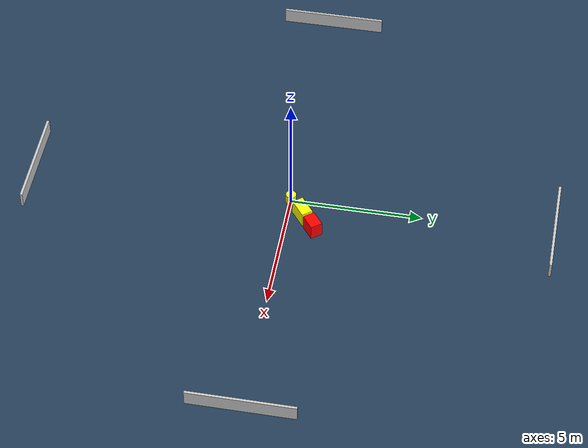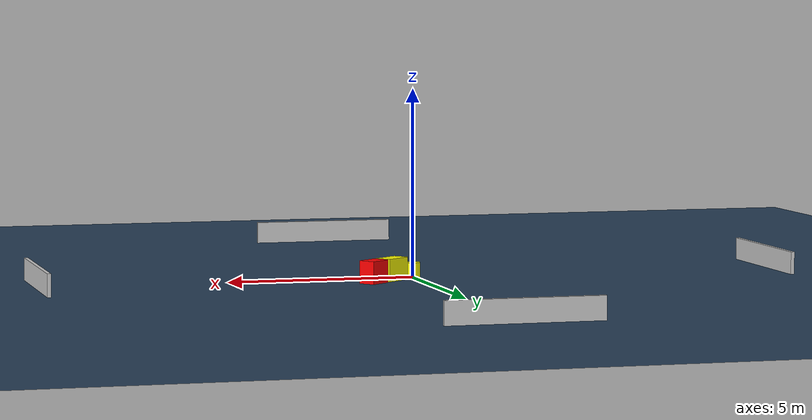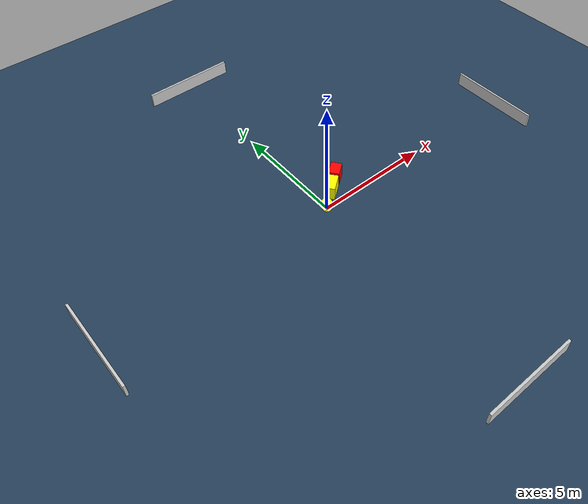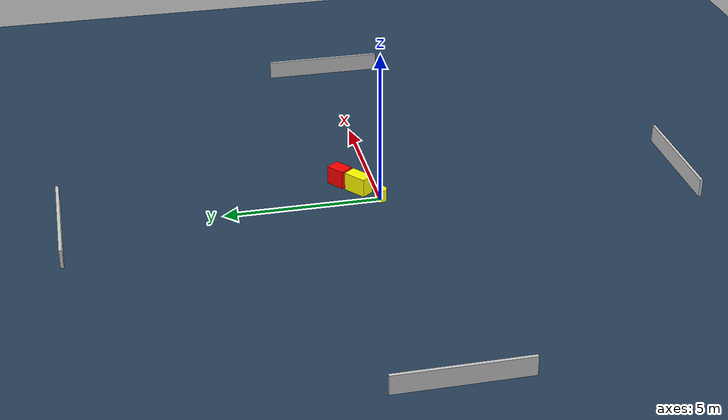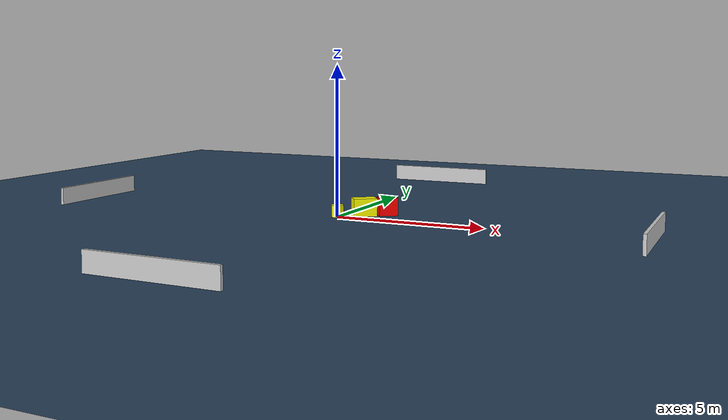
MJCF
<?xml version="1.0" ?>
<mujoco model="generated_environment">
  <option timestep="0.01" integrator="RK4" cone="elliptic"/>
  <default>
    <geom density="1"/>
  </default>
  <asset>
    <texture builtin="gradient" height="3072" name="skybox" rgb1="0.3 0.5 0.7" rgb2="0 0 0" type="skybox" width="512"/>
    <texture builtin="checker" height="300" name="groundplane" rgb1="0.2 0.3 0.4" rgb2="0.1 0.2 0.3" type="2d" width="300"/>
    <material name="groundplane" reflectance="0.2" texrepeat="5 5" texture="groundplane"/>
  </asset>
  <worldbody>
    <light dir="0 0 -1" directional="true" pos="0 0 1.5"/>
    <geom condim="3" friction="0.5 0.005 0.001" material="groundplane" name="floor" pos="0 0 0" size="0 0 0.05" type="plane"/>
    <body name="walls">
      <geom name="wall_1" condim="4" pos="-10.0 0.0 0.3" rgba="0.800000011920929 0.800000011920929 0.800000011920929 1.0" size="0.05 2.0 0.3" type="box"/>
      <geom name="wall_2" condim="4" pos="10.0 0.0 0.3" rgba="0.800000011920929 0.800000011920929 0.800000011920929 1.0" size="0.05 2.0 0.3" type="box"/>
      <geom name="wall_3" condim="4" pos="0.0 -10.0 0.3" rgba="0.800000011920929 0.800000011920929 0.800000011920929 1.0" size="2.0 0.05 0.3" type="box"/>
      <geom name="wall_4" condim="4" pos="0.0 10.0 0.3" rgba="0.800000011920929 0.800000011920929 0.800000011920929 1.0" size="2.0 0.05 0.3" type="box"/>
    </body>
    <body name="robot">
      <joint name="joint_x" type="slide" pos="0 0 0" axis="1 0 0"/>
      <joint name="joint_y" type="slide" pos="0 0 0" axis="0 1 0"/>
      <geom name="robot" type="cylinder" pos="0.0 0.0 0.2" size="0.2 0.2 0.0" mass="5.0" friction="1.0 0.005 0.0001" condim="4" rgba="1.0 1.0 0.0 1.0"/>
    </body>
    <body name="obstacle_1_movable">
      <geom name="obstacle_1_movable" condim="4" pos="0.7169801464639298 0.5597399092420536 0.3" euler="0 0 307.9037217825267" friction="0.0 0.005 0.001" rgba="1.0 1.0 0.0 1.0" size="0.21888588754886762 0.39262676986014977 0.3" type="box" mass="0.1"/>
      <joint type="free"/>
    </body>
    <body name="obstacle_2_static">
      <geom name="obstacle_2_static" condim="4" pos="1.3385309428346306 1.0536208678480883 0.3" euler="0 0 307.2034780821705" friction="0.0 0.005 0.001" rgba="1.0 0.0 0.0 1.0" size="0.23238761857333004 0.31503634318208745 0.3" type="box"/>
    </body>
  </worldbody>
  <actuator>
    <motor name="actuator_x" joint="joint_x" gear="1" ctrlrange="-1 1"/>
    <motor name="actuator_y" joint="joint_y" gear="1" ctrlrange="-1 1"/>
  </actuator>
</mujoco>
